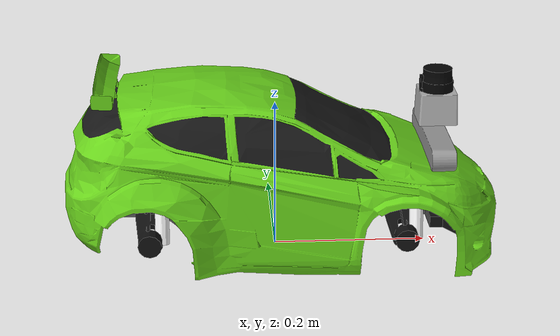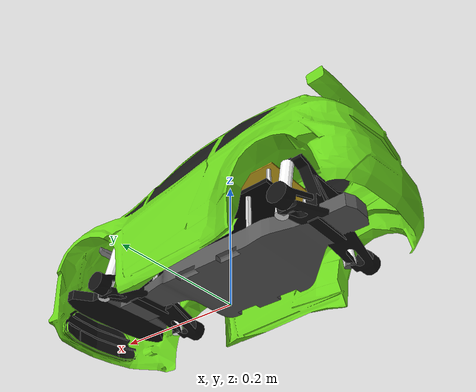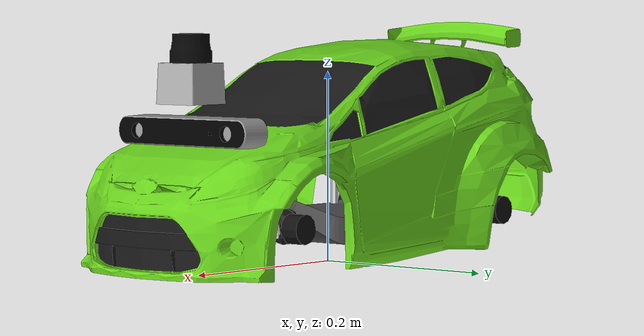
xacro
<?xml version='1.0'?>

<robot name="myrobot"
  xmlns:xacro="http://www.ros.org/wiki/xacro">

  <xacro:arg name="simulation" default="false"/>

  <xacro:if value="$(arg simulation)">
    <xacro:include filename="$(find racer_description)/urdf/racer_plugins.gazebo" />
  </xacro:if>
  <xacro:include filename="$(find racer_description)/urdf/racer_macros.xacro" />

  <xacro:property name="cameraSizeL" value="0.03"/>
  <xacro:property name="cameraSizeB" value="0.03"/>
  <xacro:property name="cameraSizeH" value="0.17"/>
  <xacro:property name="cameraMass" value="0.1"/>

  <xacro:property name="hokuyoSize" value="0.1"/>
  <xacro:property name="hokuyoMass" value="0.1"/>

  <xacro:property name="bodySizeL" value="0.49"/>
  <xacro:property name="bodySizeB" value="0.18"/>
  <xacro:property name="bodySizeH" value="0.1"/>
  <xacro:property name="bodyMass" value="3.5"/>

  <link name="base_link" />

  <joint name="base_link_joint" type="fixed">
    <origin xyz="0 0 0.05" rpy="0 0 0" />
    <parent link="base_link" />
    <child link="chassis" />
  </joint>

  <!--  Body  -->
  <link name='chassis'>
    <inertial>
      <mass value="${bodyMass}"/>
      <origin xyz="0 0 ${wheel_height/2}" rpy=" 0 0 0"/>
      <box_inertia m="${bodyMass}" l="${bodySizeL}" b="${bodySizeB}" h="${bodySizeH}" />
    </inertial>

    <collision name='collision'>
      <origin xyz="0 0 ${wheel_height/2}" rpy=" 0 0 0"/>
      <geometry>
        <box size="${bodySizeL} ${bodySizeB} ${bodySizeH}"/>
      </geometry>
    </collision>

    <visual>
      <origin xyz="0 0 0" rpy=" 0 0 0"/>
      <geometry>
        <mesh filename="package://racer_description/meshes/car.dae"/>
      </geometry>
    </visual>
  </link>

  <joint name="base_body_joint" type="fixed">
    <origin xyz="0 0 0" rpy="0 0 0" />
    <parent link="base_link" />
    <child link="body" />
  </joint>

  <link name='body'>
    <visual>
      <origin xyz="0 0 0.05" rpy=" 0 0 0"/>
      <geometry>
        <mesh filename="package://racer_description/meshes/body.dae"/>
      </geometry>
    </visual>
  </link>

  <xacro:if value="$(arg simulation)">
    <!--  Wheels  -->
    <wheel fb="front" lr="left" parent="left_steering" translateX="1" translateY="1" left="1" OffsetJointX= "${base_x_sphere_origin_to_wheel_origin}" OffsetJointY= "${base_y_sphere_origin_to_wheel_origin}" OffsetJointZ= "${base_z_sphere_origin_to_wheel_origin}" OffsetY="0.02" />

    <wheel fb="front" lr="right" parent="right_steering" translateX="1" translateY="-1" left="0" OffsetJointX= "${base_x_sphere_origin_to_wheel_origin}" OffsetJointY= "${base_y_sphere_origin_to_wheel_origin}" OffsetJointZ= "${base_z_sphere_origin_to_wheel_origin}" OffsetY="-0.02" />

    <wheel fb="back" lr="left" parent="chassis" translateX="-1" translateY="1" left="1" OffsetJointX= "${base_x_origin_to_wheel_origin}" OffsetJointY= "${base_y_origin_to_wheel_origin}" OffsetJointZ= "${base_z_origin_to_wheel_origin}" OffsetY="0.021" />

    <wheel fb="back" lr="right" parent="chassis" translateX="-1" translateY="-1" left="0" OffsetJointX= "${base_x_origin_to_wheel_origin}" OffsetJointY= "${base_y_origin_to_wheel_origin}" OffsetJointZ= "${base_z_origin_to_wheel_origin}" OffsetY="-0.021" />

    <!-- Steering -->
    <steering_hinge lr="left" parent="chassis" translateY="1" OffsetY="0.01" />
    <steering_hinge lr="right" parent="chassis" translateY="-1" OffsetY="-0.01" />
  </xacro:if>

  <!-- Camera -->
  <link name="camera">
    <inertial>
      <mass value="${cameraMass}" />
      <origin xyz="0 0 ${wheel_height/2}" rpy="0 0 0"/>
      <box_inertia m="${cameraMass}" l="${cameraSizeL}" b="${cameraSizeB}" h="${cameraSizeH}" />
    </inertial>

    <collision>
      <origin xyz="0 0 0" rpy="0 0 0"/>
      <geometry>
        <box size="${cameraSizeL} ${cameraSizeH} ${cameraSizeB}"/>
      </geometry>
    </collision>

    <visual>
      <origin xyz="0 0 0" rpy="0 0 0"/>
      <geometry>
        <mesh filename="package://racer_description/meshes/ZED.dae"/>
      </geometry>
    </visual>
  </link>s

  <joint name="camera_joint" type="fixed">
    <axis xyz="0 1 0" />
    <origin xyz="0.21 0 0.095" rpy="0 0 0"/>
    <parent link="chassis"/>
    <child link="camera"/>
  </joint>

  <!-- Hokuyo Laser -->
  <link name="laser">
    <inertial>
      <mass value="${hokuyoMass}" />
      <origin xyz="0 0 ${wheel_height/2}" rpy="0 0 0"/>
      <box_inertia m="${hokuyoMass}" l="${hokuyoSize}" b="${hokuyoSize}" h="${hokuyoSize}" />
    </inertial>

    <collision>
      <origin xyz="0 0 ${wheel_height/2}" rpy="0 0 0"/>
      <geometry>
        <box size="${hokuyoSize} ${hokuyoSize} ${hokuyoSize}"/>
      </geometry>
    </collision>

    <visual>
      <origin xyz="0 0 ${wheel_height/2}" rpy="0 0 0"/>
      <geometry>
        <mesh filename="package://racer_description/meshes/hokuyo.dae"/>
      </geometry>
    </visual>
  </link>

  <joint name="laser_joint" type="fixed">
    <axis xyz="0 1 0" />
    <origin xyz="0.21 0 0.135" rpy="0 0 0"/>
    <parent link="chassis"/>
    <child link="laser"/>
  </joint>

  <!-- IMU -->
  <link name="imu_link" />

  <joint name="imu_joint" type="fixed">
    <axis xyz="0 1 0" />
    <origin xyz="0 0 0.135" rpy="0 0 0"/>
    <parent link="chassis"/>
    <child link="imu_link"/>
  </joint>

</robot>

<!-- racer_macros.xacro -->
<robot name="racer_macros" xmlns:xacro="http://www.ros.org/wiki/xacro">

  <!-- Inertias -->
  <macro name="cylinder_inertia" params="m r h">
    <inertia  ixx="${m*(3*r*r+h*h)/12}" ixy = "0" ixz = "0"
              iyy="${m*(3*r*r+h*h)/12}" iyz = "0"
              izz="${m*r*r/2}" />
  </macro>

  <macro name="box_inertia" params="m l b h">
    <inertia  ixx="${m*(b*b+h*h)/12}" ixy = "0" ixz = "0"
              iyy="${m*(l*l+h*h)/12}" iyz = "0"
              izz="${m*(l*l+b*b)/12}" />
  </macro>

  <macro name="sphere_inertia" params="m r">
    <inertia  ixx="${2*m*(r*r)/3}" ixy = "0" ixz = "0"
              iyy="${2*m*(r*r)/3}" iyz = "0"
              izz="${2*m*(r*r)/3}" />
  </macro>

  <!-- Wheels -->
  <property name="wheel_radius" value="0.05" />
  <property name="wheel_height" value="0.045" />
  <property name="wheel_mass" value="0.2" />

  <property name="base_x_origin_to_wheel_origin" value="0.16" />
  <property name="base_y_origin_to_wheel_origin" value="0.1055" />
  <property name="base_z_origin_to_wheel_origin" value="0" />
  <property name="base_x_sphere_origin_to_wheel_origin" value="0.000" />
  <property name="base_y_sphere_origin_to_wheel_origin" value="0.001" />
  <property name="base_z_sphere_origin_to_wheel_origin" value="0" />

  <xacro:macro name="wheel" params="fb lr parent translateX translateY left OffsetJointX OffsetJointY OffsetJointZ OffsetY">
    <link name="${lr}_wheel_${fb}">
      <inertial>
        <mass value="${wheel_mass}" />
        <origin xyz="0 ${OffsetY} 0" rpy="${90*pi/180} 0 0"/>
        <cylinder_inertia  m="${wheel_mass}" r="${wheel_radius}" h="${wheel_height}" />
      </inertial>

      <collision>
        <origin xyz="0 ${OffsetY} 0" rpy="${90*pi/180} 0 0 " />
        <geometry>
          <cylinder length="${wheel_height}" radius="${wheel_radius}" />
        </geometry>
      </collision>

      <visual>
        <origin xyz="0 ${OffsetY} 0" rpy="0 0 ${left*pi}" />
        <geometry>
          <mesh filename="package://racer_description/meshes/wheel.dae"/>
        </geometry>
      </visual>
    </link>

    <joint name="${lr}_wheel_${fb}_hinge" type="continuous">
      <parent link="${parent}"/>
      <child link="${lr}_wheel_${fb}"/>
      <origin xyz="${translateX * OffsetJointX} ${translateY * OffsetJointY} ${OffsetJointZ}" rpy="0 0 0" />
      <axis xyz="0 1 0" rpy="0 0 0" />
      <limit effort="20" velocity="500"/>
      <joint_properties damping="0.0" friction="0.0"/>
    </joint>

    <transmission name="${lr}_wheel_${fb}_transmission" type="SimpleTransmission">
      <type>transmission_interface/SimpleTransmission</type>
      <joint name="${lr}_wheel_${fb}_hinge">
        <hardwareInterface>hardware_interface/EffortJointInterface</hardwareInterface>
      </joint>
      <actuator name="${lr}_wheel_${fb}_motor">
        <hardwareInterface>hardware_interface/EffortJointInterface</hardwareInterface>
        <mechanicalReduction>1</mechanicalReduction>
      </actuator>
    </transmission>

    <gazebo reference="${lr}_wheel_${fb}">
      <mu1>0.9</mu1>
      <mu2>0.9</mu2>
    </gazebo>
  </xacro:macro>

  <!-- Steering -->
  <property name="steering_radius" value="0.01" />
  <property name="steering_mass" value="0.07" />

  <xacro:macro name="steering_hinge" params="lr parent translateY OffsetY">
    <link name="${lr}_steering">
      <inertial>
        <mass value="${steering_mass}" />
        <origin xyz="0 0 0" rpy="0 0 0"/>
        <sphere_inertia  m="${steering_mass}" r="${steering_radius}" />
      </inertial>

      <visual>
        <origin xyz="0 0 0" rpy="0 0 0" />
        <geometry>
          <sphere radius="${steering_radius}"/>
        </geometry>
      </visual>
    </link>

    <gazebo reference="${lr}_steering">
      <material>Gazebo/Grey</material>
    </gazebo>

    <joint name="${lr}_steering_hinge" type="revolute">
      <origin xyz="${base_x_origin_to_wheel_origin} ${translateY * base_y_origin_to_wheel_origin} ${base_z_origin_to_wheel_origin}" rpy="0 0 0" />
      <parent link="${parent}" />
      <child link="${lr}_steering" />
      <axis xyz="0 0 1" />
      <limit lower="-1.0" upper="1.0" effort="10" velocity="100" />
    </joint>

    <transmission name="${lr}_steering_hinge_transmission" type="SimpleTransmission">
      <type>transmission_interface/SimpleTransmission</type>
      <joint name="${lr}_steering_hinge">
        <hardwareInterface>hardware_interface/EffortJointInterface</hardwareInterface>
      </joint>
      <actuator name="${lr}_steering_hinge_motor">
        <hardwareInterface>hardware_interface/EffortJointInterface</hardwareInterface>
        <mechanicalReduction>1</mechanicalReduction>
      </actuator>
    </transmission>
  </xacro:macro>
</robot>
